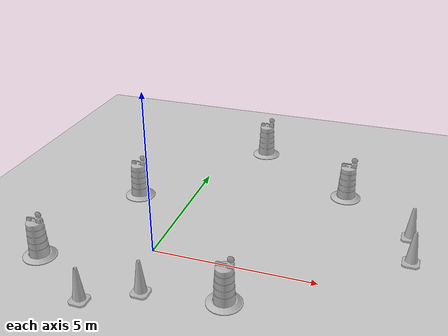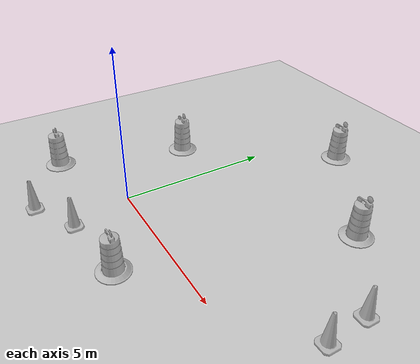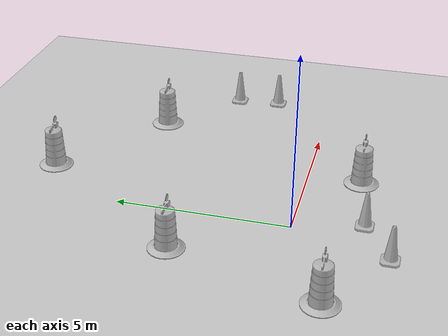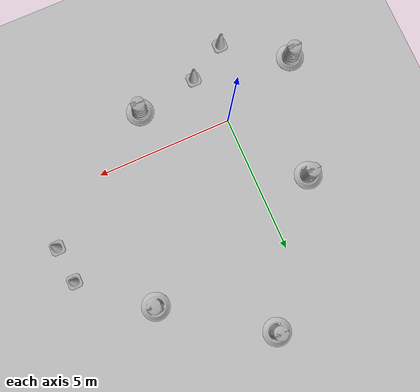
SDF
<sdf version="1.7">
 <world name="default">
  <light name="sun" type="directional">
   <pose>0 0 10 0 -0 0</pose>
   <diffuse>0.8 0.8 0.8 1</diffuse>
   <specular>0.2 0.2 0.2 1</specular>
   <attenuation>
    <range>1000</range>
    <constant>0.9</constant>
    <linear>0.01</linear>
    <quadratic>0.001</quadratic>
   </attenuation>
   <direction>-0.5 0.1 -0.9</direction>
   <spot><inner_angle>0</inner_angle><outer_angle>0</outer_angle><falloff>0</falloff></spot>
  </light>
  <model name="ground_plane">
   <static>1</static>
   <link name="link">
    <collision name="collision">
     <geometry><plane><normal>0 0 1</normal><size>100 100</size></plane></geometry>
     <surface><friction><ode><mu>100</mu><mu2>50</mu2></ode></friction></surface>
    </collision>
    <visual name="visual">
     <cast_shadows>0</cast_shadows>
     <geometry><plane><normal>0 0 1</normal><size>100 100</size></plane></geometry>
     <material>
      <script><uri>file://media/materials/scripts/gazebo.material</uri><name>Gazebo/Grey</name></script>
     </material>
    </visual>
   </link>
  </model>
  <gravity>0 0 -9.8</gravity>
  <magnetic_field>6e-06 2.3e-05 -4.2e-05</magnetic_field>
  <atmosphere type="adiabatic"/>
  <physics type="ode">
   <max_step_size>0.001</max_step_size>
   <real_time_factor>1</real_time_factor>
   <real_time_update_rate>1000</real_time_update_rate>
  </physics>
  <scene><ambient>0.4 0.4 0.4 1</ambient><background>0.7 0.7 0.7 1</background><shadows>1</shadows></scene>
  <spherical_coordinates>
   <surface_model>EARTH_WGS84</surface_model>
   <latitude_deg>0</latitude_deg>
   <longitude_deg>0</longitude_deg>
   <elevation>0</elevation>
   <heading_deg>0</heading_deg>
  </spherical_coordinates>
  <model name="Construction Barrel">
   <link name="link">
    <inertial>
     <pose>0 0 0.4 0 -0 0</pose>
     <mass>500</mass>
     <inertia><ixx>51.2096</ixx><iyy>51.2096</iyy><izz>25</izz><ixy>0</ixy><ixz>0</ixz><iyz>0</iyz></inertia>
    </inertial>
    <collision name="collision">
     <geometry><mesh><uri>model://construction_barrel/meshes/construction_barrel.dae</uri></mesh></geometry>
    </collision>
    <visual name="visual">
     <geometry><mesh><uri>model://construction_barrel/meshes/construction_barrel.dae</uri></mesh></geometry>
    </visual>
   </link>
   <pose>-1.81066 2.96798 -1e-06 3e-06 7e-06 -1.5e-05</pose>
  </model>
  <model name="Construction Barrel_0">
   <link name="link">
    <inertial>
     <pose>0 0 0.4 0 -0 0</pose>
     <mass>500</mass>
     <inertia><ixx>51.2096</ixx><iyy>51.2096</iyy><izz>25</izz><ixy>0</ixy><ixz>0</ixz><iyz>0</iyz></inertia>
    </inertial>
    <collision name="collision">
     <geometry><mesh><uri>model://construction_barrel/meshes/construction_barrel.dae</uri></mesh></geometry>
    </collision>
    <visual name="visual">
     <geometry><mesh><uri>model://construction_barrel/meshes/construction_barrel.dae</uri></mesh></geometry>
    </visual>
   </link>
   <pose>5.0025 5.04715 0 0 0 -1.5e-05</pose>
  </model>
  <model name="Construction Barrel_1">
   <link name="link">
    <inertial>
     <pose>0 0 0.4 0 -0 0</pose>
     <mass>500</mass>
     <inertia><ixx>51.2096</ixx><iyy>51.2096</iyy><izz>25</izz><ixy>0</ixy><ixz>0</ixz><iyz>0</iyz></inertia>
    </inertial>
    <collision name="collision">
     <geometry><mesh><uri>model://construction_barrel/meshes/construction_barrel.dae</uri></mesh></geometry>
    </collision>
    <visual name="visual">
     <geometry><mesh><uri>model://construction_barrel/meshes/construction_barrel.dae</uri></mesh></geometry>
    </visual>
   </link>
   <pose>-3.06478 -1.27953 -0 1e-06 -1e-06 -1.2e-05</pose>
  </model>
  <model name="Construction Barrel_2">
   <link name="link">
    <inertial>
     <pose>0 0 0.4 0 -0 0</pose>
     <mass>500</mass>
     <inertia><ixx>51.2096</ixx><iyy>51.2096</iyy><izz>25</izz><ixy>0</ixy><ixz>0</ixz><iyz>0</iyz></inertia>
    </inertial>
    <collision name="collision">
     <geometry><mesh><uri>model://construction_barrel/meshes/construction_barrel.dae</uri></mesh></geometry>
    </collision>
    <visual name="visual">
     <geometry><mesh><uri>model://construction_barrel/meshes/construction_barrel.dae</uri></mesh></geometry>
    </visual>
   </link>
   <pose>2.79284 -1.57318 -1e-06 0 5e-06 -1e-05</pose>
  </model>
  <model name="Construction Barrel_3">
   <link name="link">
    <inertial>
     <pose>0 0 0.4 0 -0 0</pose>
     <mass>500</mass>
     <inertia><ixx>51.2096</ixx><iyy>51.2096</iyy><izz>25</izz><ixy>0</ixy><ixz>0</ixz><iyz>0</iyz></inertia>
    </inertial>
    <collision name="collision">
     <geometry><mesh><uri>model://construction_barrel/meshes/construction_barrel.dae</uri></mesh></geometry>
    </collision>
    <visual name="visual">
     <geometry><mesh><uri>model://construction_barrel/meshes/construction_barrel.dae</uri></mesh></geometry>
    </visual>
   </link>
   <pose>1.50672 7.50939 -2e-06 -0 7e-06 -8e-06</pose>
  </model>
  <model name="Construction Cone">
   <link name="link">
    <collision name="collision">
     <geometry>
      <mesh><scale>10 10 10</scale><uri>model://construction_cone/meshes/construction_cone.dae</uri></mesh>
     </geometry>
    </collision>
    <visual name="visual">
     <geometry>
      <mesh><scale>10 10 10</scale><uri>model://construction_cone/meshes/construction_cone.dae</uri></mesh>
     </geometry>
    </visual>
    <inertial>
     <inertia><ixx>1</ixx><ixy>0</ixy><ixz>0</ixz><iyy>1</iyy><iyz>0</iyz><izz>1</izz></inertia>
     <mass>1</mass>
    </inertial>
   </link>
   <pose>7.26279 3.1228 -0 0 -1e-06 0</pose>
  </model>
  <model name="Construction Cone_0">
   <link name="link">
    <collision name="collision">
     <geometry>
      <mesh><scale>10 10 10</scale><uri>model://construction_cone/meshes/construction_cone.dae</uri></mesh>
     </geometry>
    </collision>
    <visual name="visual">
     <geometry>
      <mesh><scale>10 10 10</scale><uri>model://construction_cone/meshes/construction_cone.dae</uri></mesh>
     </geometry>
    </visual>
    <inertial>
     <inertia><ixx>1</ixx><ixy>0</ixy><ixz>0</ixz><iyy>1</iyy><iyz>0</iyz><izz>1</izz></inertia>
     <mass>1</mass>
    </inertial>
   </link>
   <pose>7.37373 1.79453 -9e-06 1e-06 -1e-06 0</pose>
  </model>
  <model name="Construction Cone_1">
   <link name="link">
    <collision name="collision">
     <geometry>
      <mesh><scale>10 10 10</scale><uri>model://construction_cone/meshes/construction_cone.dae</uri></mesh>
     </geometry>
    </collision>
    <visual name="visual">
     <geometry>
      <mesh><scale>10 10 10</scale><uri>model://construction_cone/meshes/construction_cone.dae</uri></mesh>
     </geometry>
    </visual>
    <inertial>
     <inertia><ixx>1</ixx><ixy>0</ixy><ixz>0</ixz><iyy>1</iyy><iyz>0</iyz><izz>1</izz></inertia>
     <mass>1</mass>
    </inertial>
   </link>
   <pose>-0.884149 -2.73163 -0 0 -0 0</pose>
  </model>
  <model name="Construction Cone_2">
   <link name="link">
    <collision name="collision">
     <geometry>
      <mesh><scale>10 10 10</scale><uri>model://construction_cone/meshes/construction_cone.dae</uri></mesh>
     </geometry>
    </collision>
    <visual name="visual">
     <geometry>
      <mesh><scale>10 10 10</scale><uri>model://construction_cone/meshes/construction_cone.dae</uri></mesh>
     </geometry>
    </visual>
    <inertial>
     <inertia><ixx>1</ixx><ixy>0</ixy><ixz>0</ixz><iyy>1</iyy><iyz>0</iyz><izz>1</izz></inertia>
     <mass>1</mass>
    </inertial>
   </link>
   <pose>0.524418 -1.92575 -0 0 -1e-06 0</pose>
  </model>
 </world>
</sdf>
